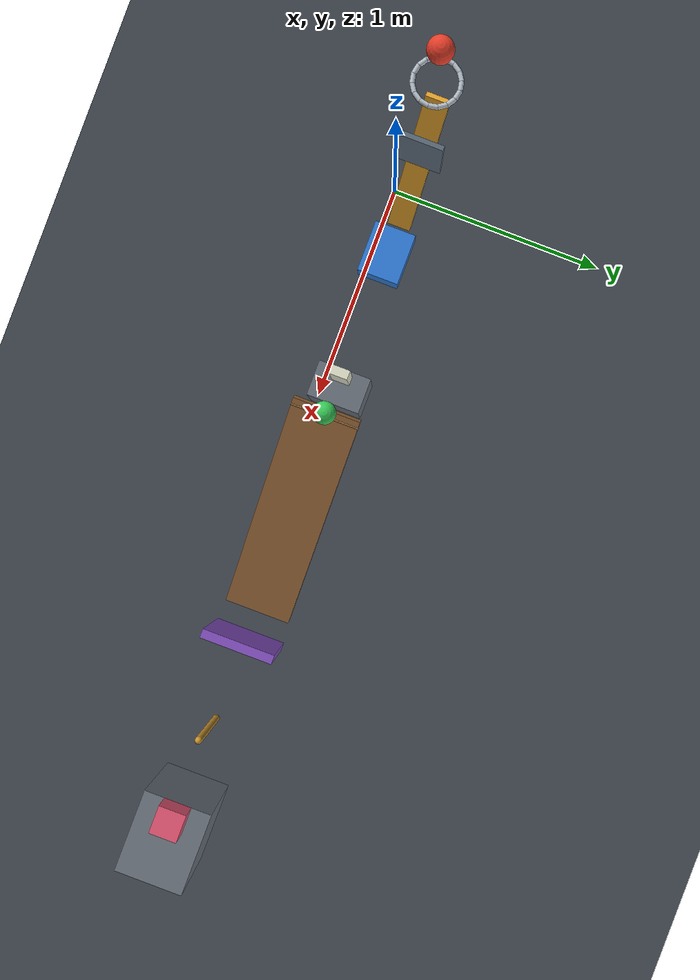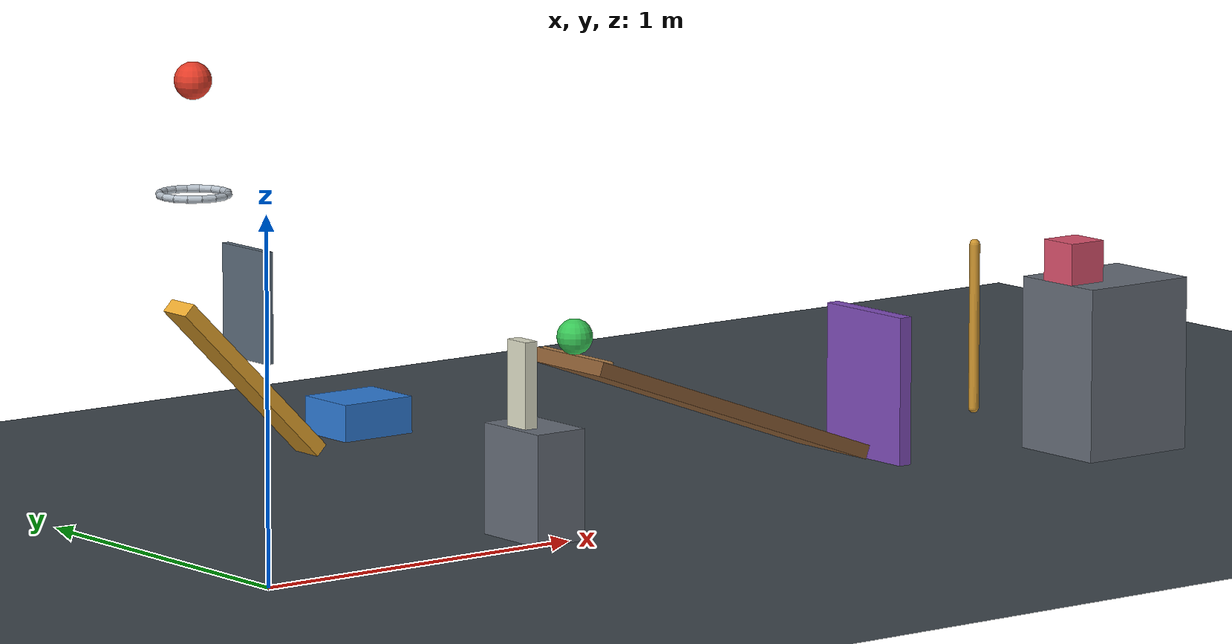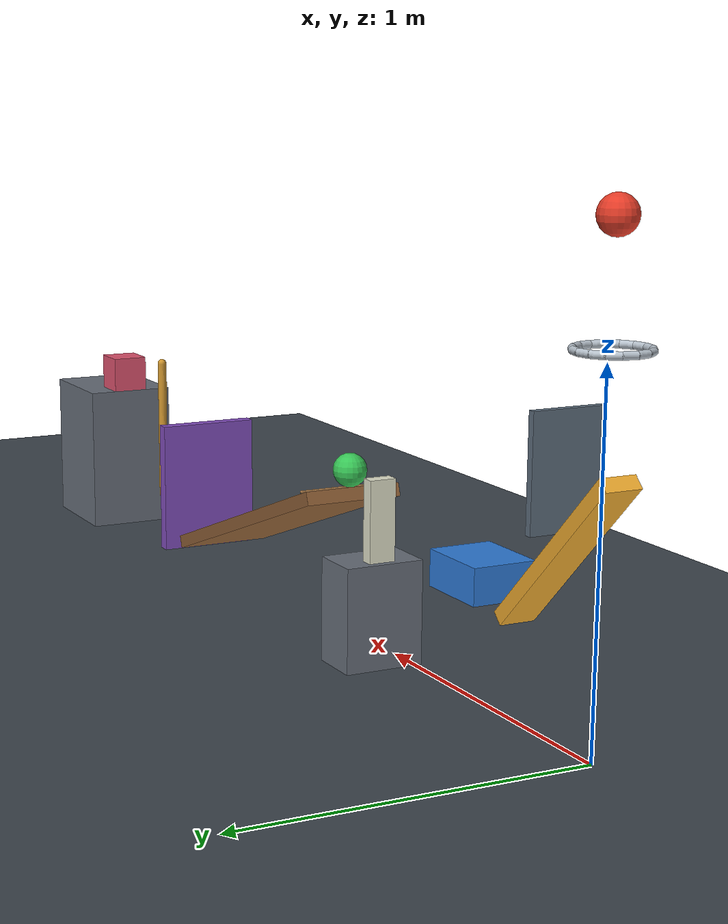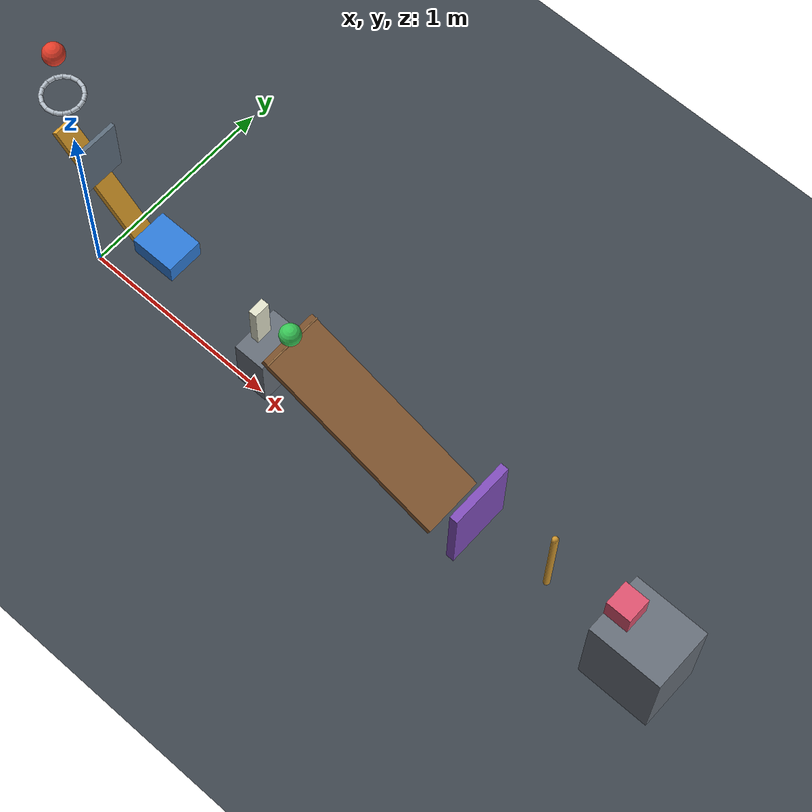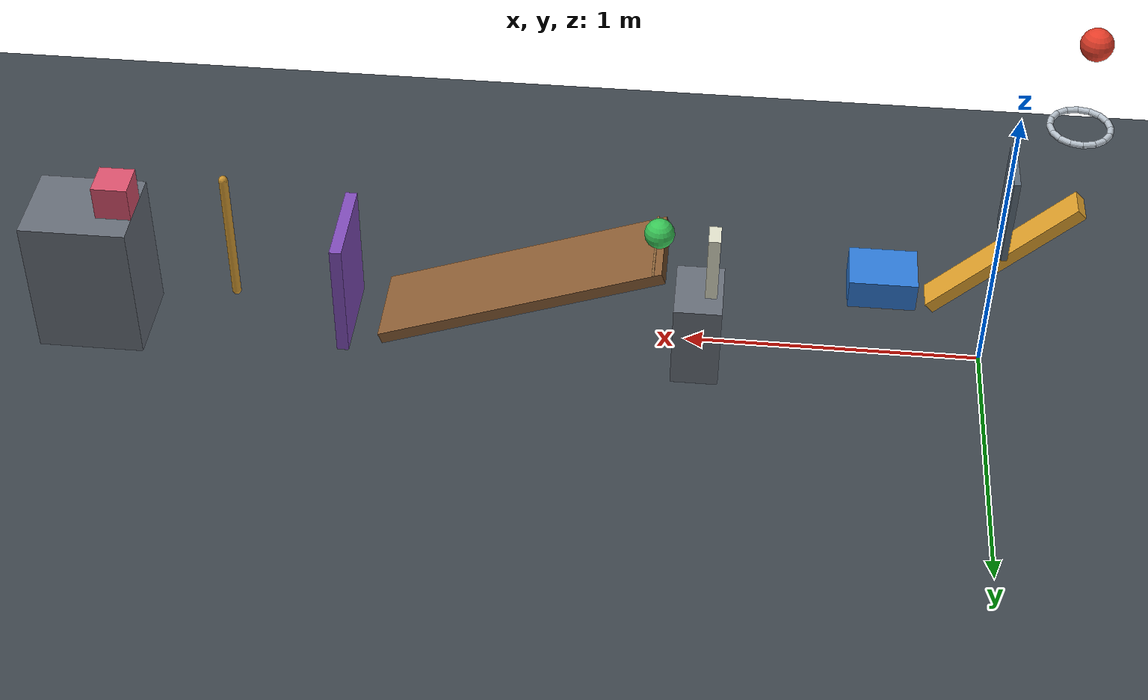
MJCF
<mujoco model="passive_chain_corrected">
  <compiler angle="degree" autolimits="true" inertiafromgeom="true"/>
  <option timestep="0.002" gravity="0 0 -9.81" integrator="implicitfast" solver="Newton" iterations="100" tolerance="1e-10" cone="elliptic"/>
  <size njmax="2000" nconmax="400"/>

  <!-- Sliding friction is 0.72; additional coefficients provide torsional and rolling friction. -->
  <!-- MuJoCo has no direct restitution attribute: damping ratio 0.71563 approximates restitution 0.04. -->
  <!-- All movable bodies start from rest, with no actuators or prescribed motion. -->

  <visual>
    <headlight ambient="0.35 0.35 0.35" diffuse="0.65 0.65 0.65" specular="0.15 0.15 0.15"/>
    <global azimuth="135" elevation="-22"/>
  </visual>

  <worldbody>
    <light name="key_light" pos="0 0 5" dir="0 0 -1" directional="true"/>
    <camera name="overview" pos="4.3 -6.5 3.2" xyaxes="0.92 0.39 0 -0.14 0.33 0.93"/>

    <geom name="floor" type="plane" pos="0 0 0" size="8 4 0.1" friction="0.72 0.005 0.003" condim="6" solref="0.008 0.71563" solimp="0.999 0.999 0.001" rgba="0.24 0.27 0.30 1"/>

    <!-- Ball-center distances: 0.30 m to the ring plane, then 0.25 m to first lever contact. -->
    <body name="ball1" pos="-0.16 0.10 1.358994949">
      <freejoint name="ball1_free"/>
      <geom name="ball1_sphere" type="sphere" size="0.05" mass="0.20" friction="0.72 0.005 0.003" condim="6" solref="0.008 0.71563" solimp="0.999 0.999 0.001" rgba="0.90 0.24 0.16 1"/>
    </body>

    <!-- The segmented ring has a minimum clear diameter of 0.16 m. -->
    <body name="ring1" pos="-0.16 0.10 1.058994949">
      <geom name="ring1_segment01" type="capsule" fromto="0.0917632 0 0 0.0847781 0.0351152 0" size="0.01" friction="0.72 0.005 0.003" condim="6" solref="0.008 0.71563" solimp="0.999 0.999 0.001" rgba="0.72 0.76 0.80 1"/>
      <geom name="ring1_segment02" type="capsule" fromto="0.0847781 0.0351152 0 0.0648864 0.0648864 0" size="0.01" friction="0.72 0.005 0.003" condim="6" solref="0.008 0.71563" solimp="0.999 0.999 0.001" rgba="0.72 0.76 0.80 1"/>
      <geom name="ring1_segment03" type="capsule" fromto="0.0648864 0.0648864 0 0.0351152 0.0847781 0" size="0.01" friction="0.72 0.005 0.003" condim="6" solref="0.008 0.71563" solimp="0.999 0.999 0.001" rgba="0.72 0.76 0.80 1"/>
      <geom name="ring1_segment04" type="capsule" fromto="0.0351152 0.0847781 0 0 0.0917632 0" size="0.01" friction="0.72 0.005 0.003" condim="6" solref="0.008 0.71563" solimp="0.999 0.999 0.001" rgba="0.72 0.76 0.80 1"/>
      <geom name="ring1_segment05" type="capsule" fromto="0 0.0917632 0 -0.0351152 0.0847781 0" size="0.01" friction="0.72 0.005 0.003" condim="6" solref="0.008 0.71563" solimp="0.999 0.999 0.001" rgba="0.72 0.76 0.80 1"/>
      <geom name="ring1_segment06" type="capsule" fromto="-0.0351152 0.0847781 0 -0.0648864 0.0648864 0" size="0.01" friction="0.72 0.005 0.003" condim="6" solref="0.008 0.71563" solimp="0.999 0.999 0.001" rgba="0.72 0.76 0.80 1"/>
      <geom name="ring1_segment07" type="capsule" fromto="-0.0648864 0.0648864 0 -0.0847781 0.0351152 0" size="0.01" friction="0.72 0.005 0.003" condim="6" solref="0.008 0.71563" solimp="0.999 0.999 0.001" rgba="0.72 0.76 0.80 1"/>
      <geom name="ring1_segment08" type="capsule" fromto="-0.0847781 0.0351152 0 -0.0917632 0 0" size="0.01" friction="0.72 0.005 0.003" condim="6" solref="0.008 0.71563" solimp="0.999 0.999 0.001" rgba="0.72 0.76 0.80 1"/>
      <geom name="ring1_segment09" type="capsule" fromto="-0.0917632 0 0 -0.0847781 -0.0351152 0" size="0.01" friction="0.72 0.005 0.003" condim="6" solref="0.008 0.71563" solimp="0.999 0.999 0.001" rgba="0.72 0.76 0.80 1"/>
      <geom name="ring1_segment10" type="capsule" fromto="-0.0847781 -0.0351152 0 -0.0648864 -0.0648864 0" size="0.01" friction="0.72 0.005 0.003" condim="6" solref="0.008 0.71563" solimp="0.999 0.999 0.001" rgba="0.72 0.76 0.80 1"/>
      <geom name="ring1_segment11" type="capsule" fromto="-0.0648864 -0.0648864 0 -0.0351152 -0.0847781 0" size="0.01" friction="0.72 0.005 0.003" condim="6" solref="0.008 0.71563" solimp="0.999 0.999 0.001" rgba="0.72 0.76 0.80 1"/>
      <geom name="ring1_segment12" type="capsule" fromto="-0.0351152 -0.0847781 0 0 -0.0917632 0" size="0.01" friction="0.72 0.005 0.003" condim="6" solref="0.008 0.71563" solimp="0.999 0.999 0.001" rgba="0.72 0.76 0.80 1"/>
      <geom name="ring1_segment13" type="capsule" fromto="0 -0.0917632 0 0.0351152 -0.0847781 0" size="0.01" friction="0.72 0.005 0.003" condim="6" solref="0.008 0.71563" solimp="0.999 0.999 0.001" rgba="0.72 0.76 0.80 1"/>
      <geom name="ring1_segment14" type="capsule" fromto="0.0351152 -0.0847781 0 0.0648864 -0.0648864 0" size="0.01" friction="0.72 0.005 0.003" condim="6" solref="0.008 0.71563" solimp="0.999 0.999 0.001" rgba="0.72 0.76 0.80 1"/>
      <geom name="ring1_segment15" type="capsule" fromto="0.0648864 -0.0648864 0 0.0847781 -0.0351152 0" size="0.01" friction="0.72 0.005 0.003" condim="6" solref="0.008 0.71563" solimp="0.999 0.999 0.001" rgba="0.72 0.76 0.80 1"/>
      <geom name="ring1_segment16" type="capsule" fromto="0.0847781 -0.0351152 0 0.0917632 0 0" size="0.01" friction="0.72 0.005 0.003" condim="6" solref="0.008 0.71563" solimp="0.999 0.999 0.001" rgba="0.72 0.76 0.80 1"/>
    </body>

    <!-- The lever begins with its left end raised; positive travel lowers it through 45 degrees. -->
    <body name="lever1" pos="0 0.10 0.55" euler="0 45 0">
      <joint name="lever1_hinge" type="hinge" axis="0 -1 0" damping="0.04" limited="true" range="0 45" solreflimit="0.004 1" solimplimit="0.999 0.999 0.001"/>
      <geom name="lever1_beam" type="box" size="0.30 0.05 0.02" mass="0.50" friction="0.72 0.005 0.003" condim="6" solref="0.008 0.71563" solimp="0.999 0.999 0.001" rgba="0.92 0.66 0.18 1"/>
    </body>

    <!-- The catcher clears the lever throughout its travel. -->
    <!-- It arrests ball1 before the ball crosses the pivot, keeping its weight on the left side. -->
    <body name="lever_ball_catcher" pos="0.01 0.10 0.75">
      <geom name="lever_ball_catcher_wall" type="box" size="0.01 0.10 0.15" friction="0.72 0.005 0.003" condim="6" solref="0.008 0.71563" solimp="0.999 0.999 0.001" rgba="0.36 0.42 0.48 1"/>
    </body>

    <!-- Initial cart front x=0.48; initial domino rear face x=0.90: contact after 0.42 m travel. -->
    <body name="cart1" pos="0.37 0.10 0.41">
      <joint name="cart1_slide" type="slide" axis="1 0 0" damping="0.20" limited="true" range="0 0.60" solreflimit="0.004 1" solimplimit="0.999 0.999 0.001"/>
      <geom name="cart1_box" type="box" size="0.11 0.09 0.05" mass="0.50" friction="0.72 0.005 0.003" condim="6" solref="0.008 0.71563" solimp="0.999 0.999 0.001" rgba="0.18 0.48 0.84 1"/>
    </body>

    <body name="domino_support" pos="0.96 0.10 0.155">
      <geom name="domino_support_box" type="box" size="0.08 0.12 0.155" friction="0.72 0.005 0.003" condim="6" solref="0.008 0.71563" solimp="0.999 0.999 0.001" rgba="0.40 0.43 0.47 1"/>
    </body>

    <!-- The 0.04 m thickness is aligned with the toppling direction. -->
    <body name="domino1" pos="0.92 0.10 0.43">
      <freejoint name="domino1_free"/>
      <geom name="domino1_box" type="box" size="0.02 0.04 0.12" mass="0.25" friction="0.72 0.005 0.003" condim="6" solref="0.008 0.71563" solimp="0.999 0.999 0.001" rgba="0.88 0.88 0.79 1"/>
    </body>

    <!-- Domino and ball2 centers have 0.18 m horizontal spacing. -->
    <body name="ball2" pos="1.10 0.10 0.539004774">
      <freejoint name="ball2_free"/>
      <geom name="ball2_sphere" type="sphere" size="0.05" mass="0.20" friction="0.72 0.005 0.003" condim="6" solref="0.008 0.71563" solimp="0.999 0.999 0.001" rgba="0.22 0.78 0.34 1"/>
    </body>

    <!-- Ramp upper surface: 1.00 m long, 0.30 m wide, inclined at 20 degrees. -->
    <!-- Downhill endpoint: (2.022591614, 0.10, 0.15). -->
    <!-- The revised lip holds the initially stationary ball but requires only about 1.1 mm of center-height rise to cross. -->
    <body name="ramp1" pos="1.545904900 0.10 0.302216219" euler="0 20 0">
      <geom name="ramp1_surface" type="box" size="0.50 0.15 0.02" friction="0.72 0.005 0.003" condim="6" solref="0.008 0.71563" solimp="0.999 0.999 0.001" rgba="0.54 0.36 0.20 1"/>
      <geom name="ramp1_retaining_lip" type="capsule" fromto="-0.471715729 -0.15 0.024 -0.471715729 0.15 0.024" size="0.004" friction="0.72 0.005 0.003" condim="6" solref="0.008 0.71563" solimp="0.999 0.999 0.001" rgba="0.64 0.46 0.27 1"/>
    </body>

    <!-- The initial upstream door face is 0.10 m beyond the ramp endpoint. -->
    <!-- The upright, bottom-hinged door is gravity-driven after ball2 initiates its rotation. -->
    <body name="door1" pos="2.142591614 0.10 0.08">
      <joint name="door1_hinge" type="hinge" axis="0 1 0" damping="0.04" limited="true" range="0 70" solreflimit="0.004 1" solimplimit="0.999 0.999 0.001"/>
      <geom name="door1_panel" type="box" pos="0 0 0.21" size="0.02 0.16 0.21" mass="0.45" friction="0.72 0.005 0.003" condim="6" solref="0.008 0.71563" solimp="0.999 0.999 0.001" rgba="0.50 0.30 0.73 1"/>
    </body>

    <!-- The rigid pendulum is inverted: initially balanced upright, then tipped by the door. -->
    <!-- Capsule end-to-end length is 0.50 m and total mass is 0.35 kg. -->
    <body name="pendulum1" pos="2.53 0.10 0.16">
      <joint name="pendulum1_hinge" type="hinge" axis="0 1 0" damping="0.04" limited="true" range="0 38" solreflimit="0.004 1" solimplimit="0.999 0.999 0.001"/>
      <geom name="pendulum1_rod" type="capsule" fromto="0 0 0.015 0 0 0.485" size="0.015" mass="0.35" friction="0.72 0.005 0.003" condim="6" solref="0.008 0.71563" solimp="0.999 0.999 0.001" rgba="0.80 0.58 0.18 1"/>
    </body>

    <body name="block_support" pos="3.022 0.10 0.25">
      <geom name="block_support_box" type="box" size="0.18 0.15 0.25" friction="0.72 0.005 0.003" condim="6" solref="0.008 0.71563" solimp="0.999 0.999 0.001" rgba="0.40 0.43 0.47 1"/>
    </body>

    <!-- Block contact begins immediately before the pendulum's 38-degree stop. -->
    <body name="block1" pos="2.902 0.10 0.56">
      <freejoint name="block1_free"/>
      <geom name="block1_cube" type="box" size="0.06 0.06 0.06" mass="0.35" friction="0.72 0.005 0.003" condim="6" solref="0.008 0.71563" solimp="0.999 0.999 0.001" rgba="0.86 0.32 0.43 1"/>
    </body>
  </worldbody>

  <!-- Default keyframe positions are qpos0; default velocities are zero. -->
  <keyframe>
    <key name="start" time="0"/>
  </keyframe>
</mujoco>
